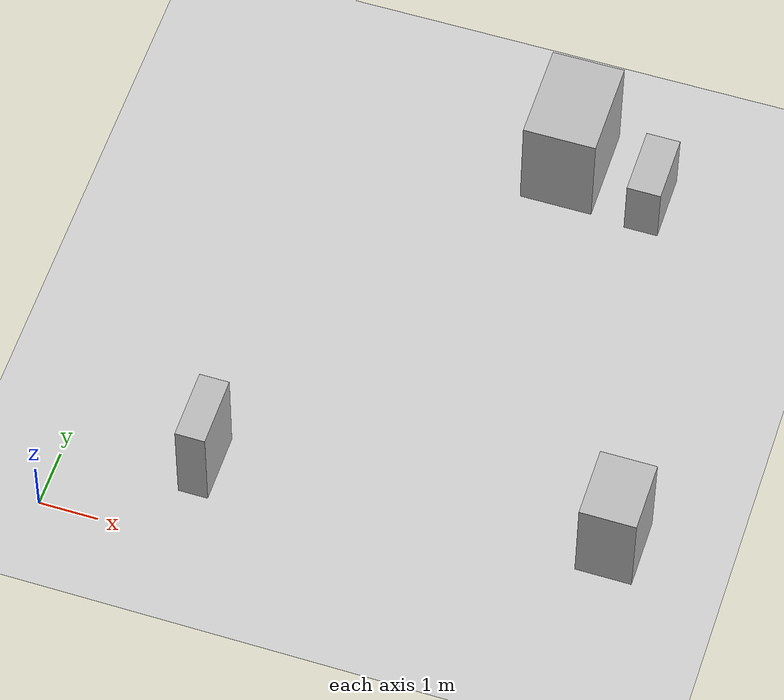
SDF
<?xml version="1.0" ?>
<sdf version="1.5">
  <world name="default">
    <include>
      <uri>model://sun</uri>
    </include>
    <include>
      <uri>model://ground_plane</uri>
    </include>

    <model name="obstacle_0">
      <pose>9.12 2.08 0.86 0 0 0</pose>
      <static>true</static>
      <link name="link">
        <collision name="collision">
          <geometry>
            <box>
              <size>0.95 1.21 1.71</size>
            </box>
          </geometry>
        </collision>
        <visual name="visual">
          <geometry>
            <box>
              <size>0.95 1.21 1.71</size>
            </box>
          </geometry>
        </visual>
      </link>
    </model>

    <model name="obstacle_1">
      <pose>6.27 9.22 0.93 0 0 0</pose>
      <static>true</static>
      <link name="link">
        <collision name="collision">
          <geometry>
            <box>
              <size>1.26 1.74 1.86</size>
            </box>
          </geometry>
        </collision>
        <visual name="visual">
          <geometry>
            <box>
              <size>1.26 1.74 1.86</size>
            </box>
          </geometry>
        </visual>
      </link>
    </model>

    <model name="obstacle_2">
      <pose>2.32 1.53 0.84 0 0 0</pose>
      <static>true</static>
      <link name="link">
        <collision name="collision">
          <geometry>
            <box>
              <size>0.51 1.21 1.68</size>
            </box>
          </geometry>
        </collision>
        <visual name="visual">
          <geometry>
            <box>
              <size>0.51 1.21 1.68</size>
            </box>
          </geometry>
        </visual>
      </link>
    </model>

    <model name="obstacle_3">
      <pose>7.8 8.87 0.56 0 0 0</pose>
      <static>true</static>
      <link name="link">
        <collision name="collision">
          <geometry>
            <box>
              <size>0.59 1.21 1.12</size>
            </box>
          </geometry>
        </collision>
        <visual name="visual">
          <geometry>
            <box>
              <size>0.59 1.21 1.12</size>
            </box>
          </geometry>
        </visual>
      </link>
    </model>

    <plugin
      name="bounding_box_plugin"
      filename="/home/andrea/ros_packages_aggiuntivi/devel/lib/libbounding_box_plugin.so"
    />

    </world>
</sdf>
